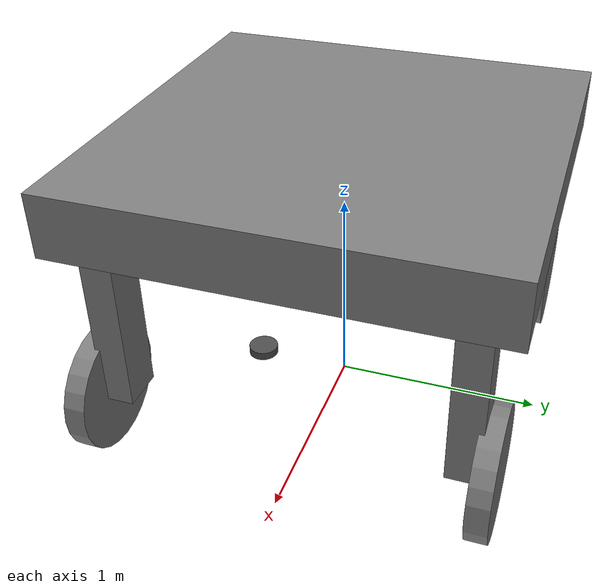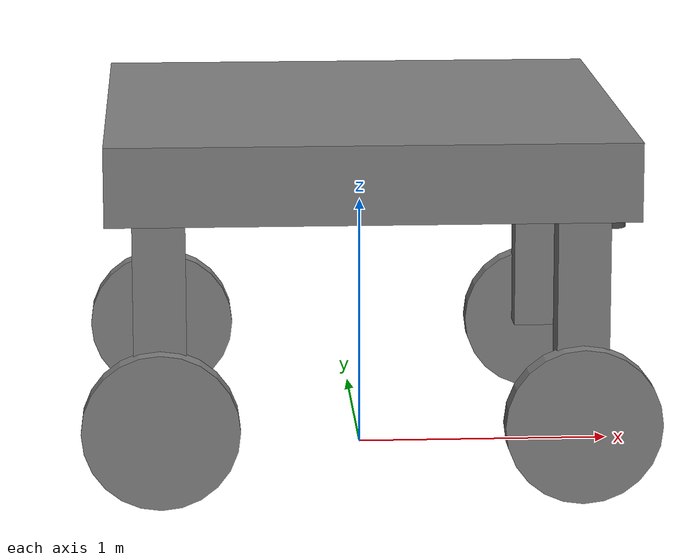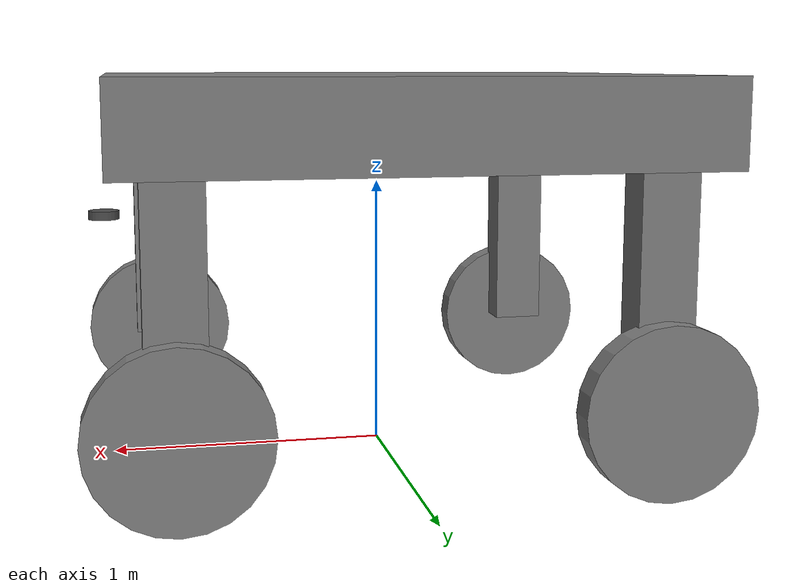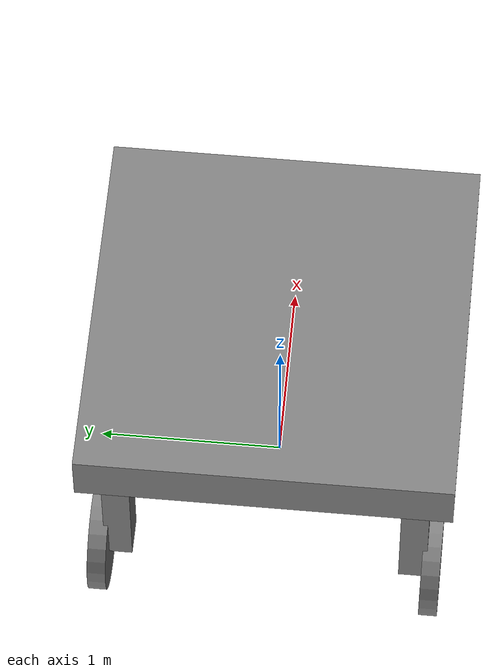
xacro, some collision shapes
<?xml version="1.0"?>
<robot xmlns:xacro="http://www.ros.org/wiki/xacro" name="acorn">

    <!-- REFER TO IMAGES FOLDER FOR VISUAL REPRESENTATION OF THE ROBOT -->
    <xacro:include filename="wheel_module_macro.xacro" />
    <xacro:include filename="color_macro.xacro" />
    <xacro:include filename="inertia_macro.xacro" />

    <!-- CONSTANTS -->
    <xacro:property name="PI" value="3.1415926535897931"/>

    <!-- Chassis dimensions -->
    <xacro:property name="chassis_mass" value="30.0"/> <!-- kilograms -->
    <xacro:property name="chassis_length" value="2"/> <!-- meters -->
    <xacro:property name="chassis_width" value="2"/>
    <xacro:property name="chassis_height" value="0.3"/>

    <!-- Wheel Module dimensions -->
    <xacro:property name="base_to_module_x" value="0.8"/> <!-- meters -->
    <xacro:property name="base_to_module_y" value="0.8"/>
    <xacro:property name="module_width_x" value="0.2"/>
    <xacro:property name="module_width_y" value="0.15"/>
    <xacro:property name="module_height" value="0.8"/>

    <!-- Wheel dimensions -->
    <xacro:property name="wheel_mass" value="5.0"/> <!-- kilograms -->
    <xacro:property name="wheel_radius" value="0.3"/> <!-- meters -->
    <xacro:property name="wheel_width" value="0.1"/>

    <!-- Define a base links for the robot. base_link and base_footprint needed for Nav2 -->
    <link name="base_footprint"/>

    <joint name="base_joint" type="fixed">
        <parent link="base_footprint"/>
        <child link="base_link"/>
        <origin xyz="0 0 ${module_height + wheel_radius}" rpy="0 0 0"/>
    </joint>

    <link name="base_link"/>

    <!-- Define a chassis link for the robot -->
    <joint name="chassis_joint" type="fixed">
        <parent link="base_link"/>
        <child link="chassis"/>
        <!-- Place the chassis at half of chassis height above the base link -->
        <origin xyz="0 0 ${chassis_height/2.0}" rpy="0 0 0"/>
    </joint>

    <link name="chassis">
        <visual>
            <origin xyz="0 0 0"/>
            <geometry>
                <box size="${chassis_length} ${chassis_width} ${chassis_height}"/>
            </geometry>
            <material name="grey"/>
        </visual>
        <collision>
            <origin xyz="0 0 0"/>
            <geometry>
                <box size="${chassis_length} ${chassis_width} ${chassis_height}"/>
            </geometry>
        </collision>
        <xacro:inertial_box mass="${chassis_mass}" x="${chassis_length}" y="${chassis_width}" z="${chassis_height}">
            <origin xyz="0 0 0" rpy="0 0 0"/>
        </xacro:inertial_box>
    </link>

    <!-- Define joints to connect static links to the base link -->
    <joint name="FL_joint" type="fixed">
        <parent link="base_link"/>
        <child link="front_left"/>
        <origin xyz="${base_to_module_x} ${base_to_module_y} 0" rpy="0 0 0"/>
    </joint>

    <joint name="FR_joint" type="fixed">
        <parent link="base_link"/>
        <child link="front_right"/>
        <origin xyz="${base_to_module_x} -${base_to_module_y} 0" rpy="0 0 0"/>
    </joint>

    <joint name="RL_joint" type="fixed">
        <parent link="base_link"/>
        <child link="rear_left"/>
        <origin xyz="-${base_to_module_x} ${base_to_module_y} 0" rpy="0 0 0"/>
    </joint>

    <joint name="RR_joint" type="fixed">
        <parent link="base_link"/>
        <child link="rear_right"/>
        <origin xyz="-${base_to_module_x} -${base_to_module_y} 0" rpy="0 0 0"/>
    </joint>

    <!-- Define 4 static links which will be used to connect the wheel modules to the base link -->
    <link name="front_left">
    </link>
    <link name="front_right">
    </link>
    <link name="rear_left">
    </link>
    <link name="rear_right">
    </link>

    <!-- Define the wheel modules -->
    <!-- params="parent_name mass radius width module_len module_width_x module_width_y cx cy cz side" -->
    <!-- NOTE: cx,cy,cz are the coordinates of the child link's center w.r.t the parent link -->
    <xacro:wheel_assembly parent_name="front_left" mass="${wheel_mass}" radius="${wheel_radius}" width="${wheel_width}" module_len="${module_height}" module_width_x="${module_width_x}" module_width_y="${module_width_y}" cx="0" cy="0" cz="${-module_height/2.0}" side="left"/>
    <xacro:wheel_assembly parent_name="front_right" mass="${wheel_mass}" radius="${wheel_radius}" width="${wheel_width}" module_len="${module_height}" module_width_x="${module_width_x}" module_width_y="${module_width_y}" cx="0" cy="0" cz="${-module_height/2.0}" side="right"/>
    <xacro:wheel_assembly parent_name="rear_left" mass="${wheel_mass}" radius="${wheel_radius}" width="${wheel_width}" module_len="${module_height}" module_width_x="${module_width_x}" module_width_y="${module_width_y}" cx="0" cy="0" cz="${-module_height/2.0}" side="left"/>
    <xacro:wheel_assembly parent_name="rear_right" mass="${wheel_mass}" radius="${wheel_radius}" width="${wheel_width}" module_len="${module_height}" module_width_x="${module_width_x}" module_width_y="${module_width_y}" cx="0" cy="0" cz="${-module_height/2.0}" side="right"/>

    <!-- IMU temporarily placed 5cm above base link -->
    <joint name="imu_joint" type="fixed">
        <parent link="base_link"/>
        <child link="imu_link"/>
        <origin xyz="0.0 0.0 ${chassis_height/3}" rpy="0 0 0"/>
    </joint>

    <link name="imu_link"/>

    <!-- GPS link at base link -->
    <joint name="gps_joint" type="fixed">
        <parent link="base_link"/>
        <child link="gps_link"/>
        <origin xyz="0 0 0" rpy="0 0 0"/>
    </joint>

    <link name="gps_link">
        <inertial>
            <mass>0.001</mass>
            <ixx>0.001</ixx>
            <ixy>0.000</ixy>
            <ixz>0.000</ixz>
            <iyy>0.001</iyy>
            <iyz>0.000</iyz>
            <izz>0.001</izz>
        </inertial>
    </link>

    <!-- 2D Lidar placed in front center 20cm below chassis-->
    <joint name="scan_joint" type="fixed">
        <parent link="base_link"/>
        <child link="base_scan"/>
        <origin xyz="${chassis_length/2} 0 -0.2" rpy="0 0 0"/>
    </joint>

    <link name="base_scan">
        <visual>
        <origin xyz="0 0 0" rpy="0 0 0"/>
        <geometry>
            <mesh filename="package://turtlebot3_gazebo/models/turtlebot3_common/meshes/lds.dae" scale="0.001 0.001 0.001"/>
        </geometry>
        <material name="dark"/>
        </visual>

        <collision>
        <origin xyz="0.015 0 -0.0065" rpy="0 0 0"/>
        <geometry>
            <cylinder length="0.0315" radius="0.055"/>
        </geometry>
        </collision>

        <inertial>
        <mass value="0.114" />
        <origin xyz="0 0 0" />
        <inertia ixx="0.001" ixy="0.0" ixz="0.0"
                iyy="0.001" iyz="0.0"
                izz="0.001" />
        </inertial>
    </link>

    <!-- CONTROLLERS -->
    <xacro:macro name="steering_module_controller" params="name">
        <joint name="wheel_module_${name}_joint">
            <command_interface name="position">
                <param name="min">-${2 * PI}</param>
                <param name="max">${2 * PI}</param>
            </command_interface>
            <state_interface name="position"/>
            <state_interface name="velocity"/>
            <state_interface name="acceleration"/>
        </joint>
        <joint name="wheel_${name}_joint">
            <command_interface name="velocity">
                <param name="min">-1</param>
                <param name="max">1</param>
            </command_interface>
            <state_interface name="position"/>
            <state_interface name="velocity"/>
            <state_interface name="acceleration"/>
        </joint>
    </xacro:macro>

    <ros2_control name="ZingerJointControl" type="system">
        <hardware>
            <plugin>ign_ros2_control/IgnitionSystem</plugin>
        </hardware>
        <xacro:steering_module_controller name="front_left" />
        <xacro:steering_module_controller name="rear_left" />
        <xacro:steering_module_controller name="rear_right" />
        <xacro:steering_module_controller name="front_right" />
    </ros2_control>

    <!-- Include gazebo macros for sim -->
    <xacro:include filename="gazebo.xacro" />

</robot>

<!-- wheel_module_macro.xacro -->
<robot xmlns:xacro="http://www.ros.org/wiki/xacro">

    <include filename="color_macro.xacro"/>
    <include filename="inertia_macro.xacro"/>

    <!-- Wheel dimensions -->
    <xacro:property name="wheel_link_radius" value="0.15"/>
    <xacro:property name="wheel_link_length" value="0.1"/>

    <!-- Material Density -->
    <xacro:property name="wheel_density" value="2710.0"/>

    <!-- Pi Constant -->
    <xacro:property name="pi_const" value="3.141592265"/>

    <!-- Robot body and wheel mass -->
    <xacro:property name="wheel_mass" value="${wheel_density*pi_const*wheel_link_radius*wheel_link_radius*wheel_link_length}"/>

    <!-- Moments of inertial of the wheel -->
    <xacro:property name="Iz_wheel" value="${0.5*wheel_mass*wheel_link_radius*wheel_link_radius}"/>
    <xacro:property name="I_wheel" value="${(1.0/12.0)*wheel_mass*(3*wheel_link_radius*wheel_link_radius+wheel_link_length*wheel_link_length)}"/>

    <!-- macros -->

    <xacro:macro name="inertia_wheel">
        <inertial>
            <origin rpy="0 0 0" xyz="0 0 0"/>
            <mass value="${wheel_mass}"/>
            <inertia ixx="${I_wheel}" ixy="0.0" ixz="0.0" iyy="${I_wheel}" iyz="0" izz="${Iz_wheel}"/>

        </inertial>

    </xacro:macro>

    <xacro:macro name="wheel_assembly" params="parent_name mass radius width module_len module_width_x module_width_y cx cy cz side">
        <joint name="wheel_module_${parent_name}_joint" type="continuous">
            <parent link="${parent_name}"/>
            <child link="wheel_module_${parent_name}"/>
            <origin xyz="${cx} ${cy} ${cz}" rpy="0 0 0"/> <!-- This origin is where child link is placed w.r.t parent link -->
            <axis xyz="0 0 1"/>
        </joint>

        <!-- Define the wheel module link -->
        <link name="wheel_module_${parent_name}">
            <visual>
                <origin xyz="0 0 0"/> <!-- This origin is w.r.t the wheel_module_${parent_name} link -->
                <geometry>
                    <box size="${module_width_x} ${module_width_y} ${module_len}"/>
                </geometry>
                <material name="grey"/>
            </visual>
            <collision>
                <origin xyz="0 0 0"/> <!-- This origin is w.r.t the wheel_module_${parent_name} link -->
                <geometry>
                    <box size="${module_width_x} ${module_width_y} ${module_len}"/>
                </geometry>
            </collision>
            <!-- !Hardcoded mass -->
            <xacro:inertial_box mass="0.1" x="${module_width_x}" y="${module_width_y}" z="${module_len}">
                <origin xyz="0 0 0" rpy="0 0 0"/>
            </xacro:inertial_box>
        </link>

        <!-- Define the wheel link -->
        <xacro:if value="${side == 'left'}">
            <xacro:property name="wheel_position_y" value="${width}"/>
            <xacro:property name="wheel_pitch" value="${PI/2}"/>
        </xacro:if>
        <xacro:if value="${side == 'right'}">
            <xacro:property name="wheel_position_y" value="-${width}"/>
            <xacro:property name="wheel_pitch" value="${PI/2}"/>
        </xacro:if>

        <joint name="wheel_${parent_name}_joint" type="continuous">
            <parent link="wheel_module_${parent_name}"/>
            <child link="wheel_${parent_name}"/>
            <origin xyz="0 ${wheel_position_y} ${-module_len/2.0}" rpy="0 0 0"/>
            <axis xyz="0 1 0"/>
            <limit effort="2000" velocity="2000"/>
            <dynamics damping="1.0" friction="0.5"/>
        </joint>

        <link name="wheel_${parent_name}">
            <visual>
                <origin rpy="${wheel_pitch} 0 0" xyz="0 0 0"/>
                <geometry>
                    <cylinder radius="${radius}" length="${width}"/>
                </geometry>
                <material name="grey"/>
            </visual>
            <collision>
                <origin rpy="${wheel_pitch} 0 0" xyz="0 0 0"/>
                <geometry>
                    <cylinder radius="${radius}" length="${width}"/>
                </geometry>
            </collision>
            <xacro:inertia_wheel />
        </link>

    </xacro:macro>

</robot>

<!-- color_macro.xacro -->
<robot xmlns:xacro="http://www.ros.org/wiki/xacro" >

    <!-- Define Common Colors to be used elsewhere -->

    <material name="black">
        <color rgba="0.0 0.0 0.0 1.0"/>
    </material>

    <material name="dark">
        <color rgba="0.3 0.3 0.3 1.0"/>
    </material>

    <material name="light_black">
        <color rgba="0.4 0.4 0.4 1.0"/>
    </material>

    <material name="blue">
        <color rgba="0.0 0.0 0.8 1.0"/>
    </material>

    <material name="green">
        <color rgba="0.0 0.8 0.0 1.0"/>
    </material>

    <material name="grey">
        <color rgba="0.5 0.5 0.5 1.0"/>
    </material>

    <material name="orange">
        <color rgba="1.0 0.4235 0.0392 1.0"/>
    </material>

    <material name="brown">
        <color rgba="0.8706 0.8118 0.7647 1.0"/>
    </material>

    <material name="red">
        <color rgba="0.8 0.0 0.0 1.0"/>
    </material>

    <material name="white">
        <color rgba="1.0 1.0 1.0 1.0"/>
    </material>

</robot>
